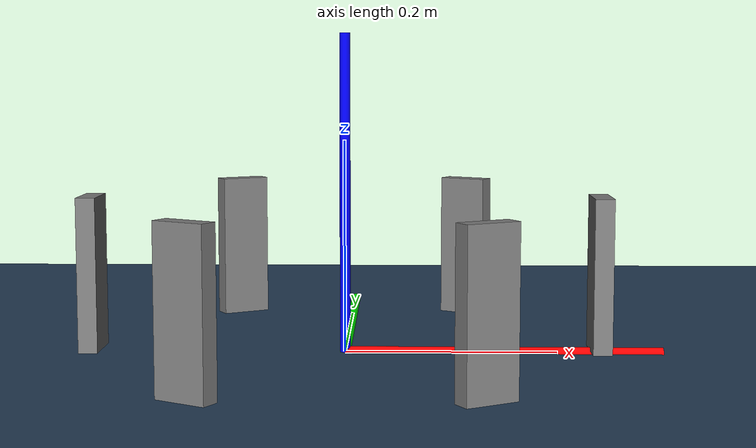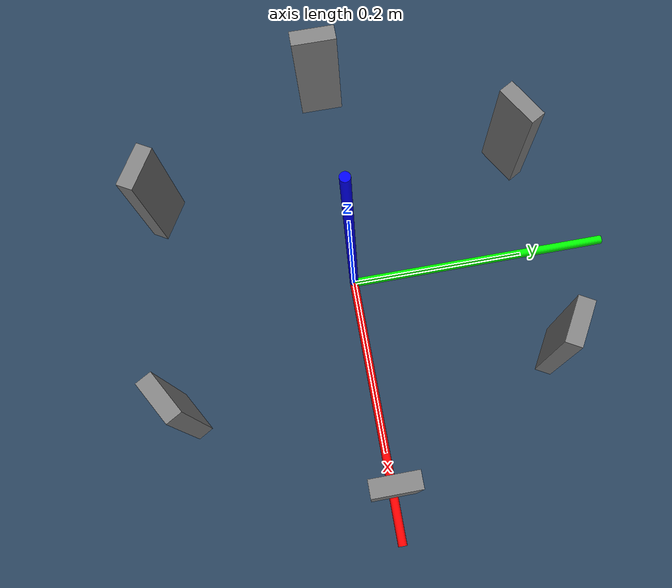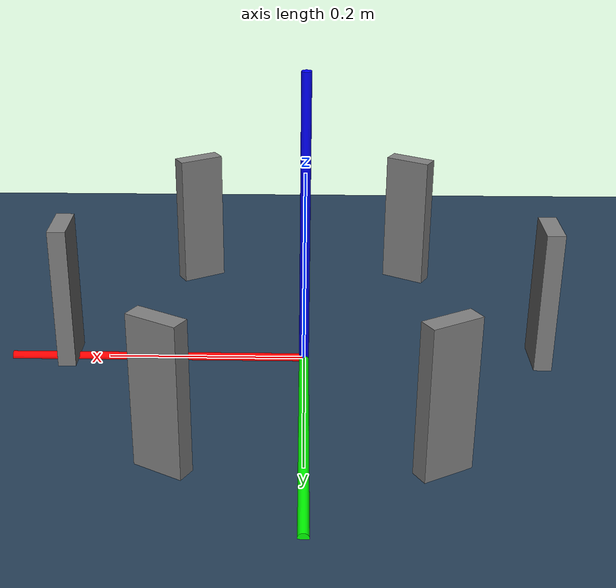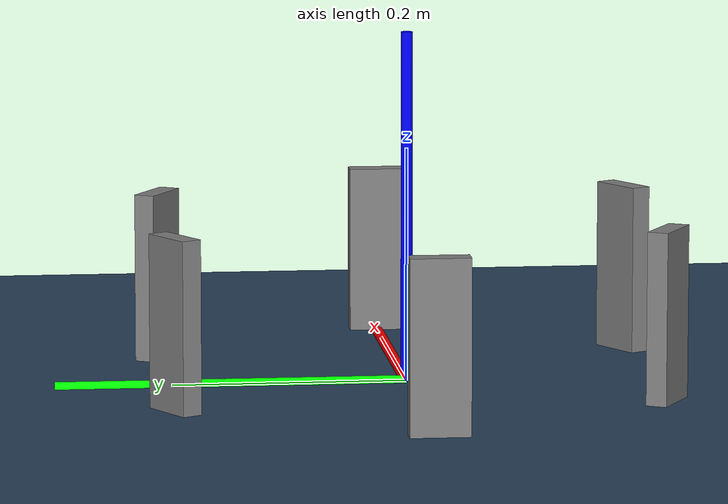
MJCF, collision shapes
<mujoco model="six">
  <compiler angle="radian" meshdir="assets" autolimits="true"/>
  <option integrator="implicitfast" gravity="0 0 -9.8"/>
  <default>
  <default class="mesh_collision">
      <geom type="box" contype="1" conaffinity="1" group="3"
            solimp="0.95 0.99 0.001" solref="0.004 1"
            size="0.009 0.025 0.073"/>  <!-- 每个碰撞盒: 半宽0.009, 半高0.025, 半深0.073 -->
  </default>
      <default class="visual">
        <geom type="mesh" contype="0" conaffinity="0" group="2"/>
      </default>
  </default>

  <asset>
    <texture type="skybox" builtin="gradient" rgb1="0.3 0.5 0.7" rgb2="0 0 0" width="512" height="3072"/>
    <texture type="2d" name="groundplane" builtin="checker" mark="edge" rgb1="0.2 0.3 0.4" rgb2="0.1 0.2 0.3"
      markrgb="0.8 0.8 0.8" width="300" height="300"/>
    <mesh file="sixth.STL"/>
    <material name="gray" rgba="0.4627 0.4627 0.4627 1"/>
    <material name="groundplane" texture="groundplane" texuniform="true" texrepeat="5 5" reflectance="0.2"/>
  </asset>

  <worldbody>
    <body name="six" pos="0 0 0" euler="0 0 0">
        <!--pos="-0.98 -1.2 -1.2"可以把没旋转的模型移到中心坐标；pos="-1 1.2 2" euler="3.14 0 0"可以挪动模型,0.2/小格-->
            <joint name="six_joint" type="free"/>
            <geom class="visual" mesh="sixth"/>
            <inertial mass="0.1" pos="0 0 0" diaginertia="0.0025599 0.0025599 0.0021942"/>
            <geom class="mesh_collision" name="col_side1" pos="0.24 0 0.075" euler="0 0 0.000"/>
            <geom class="mesh_collision" name="col_side2" pos="0.122 0.205 0.075" euler="0 0 1.047"/>
            <geom class="mesh_collision" name="col_side3" pos="-0.12 0.205 0.075" euler="0 0 2.094"/>
            <geom class="mesh_collision" name="col_side4" pos="-0.24 0 0.075" euler="0 0 3.142"/>
            <geom class="mesh_collision" name="col_side5" pos="-0.12 -0.205 0.075" euler="0 0 4.189"/>
            <geom class="mesh_collision" name="col_side6" pos="0.122 -0.205 0.075" euler="0 0 5.236"/>
    </body>
    <geom name="floor" size="0 0 0.05" type="plane" material="groundplane"/>
    <light pos="0 0 1.5" dir="0 0 -1" directional="true"/>
        <body name="world_frame" pos="0 0 0">
            <geom name="X" type="cylinder" size="0.005" fromto="0 0 0 0.3 0 0" rgba="1 0 0 1" contype="0"
                  conaffinity="0"/>
            <geom name="Y" type="cylinder" size="0.005" fromto="0 0 0 0 0.3 0" rgba="0 1 0 1" contype="0"
                  conaffinity="0"/>
            <geom name="Z" type="cylinder" size="0.005" fromto="0 0 0 0 0 0.3" rgba="0 0 1 1" contype="0"
                  conaffinity="0"/>
        </body>
  </worldbody>

</mujoco>
